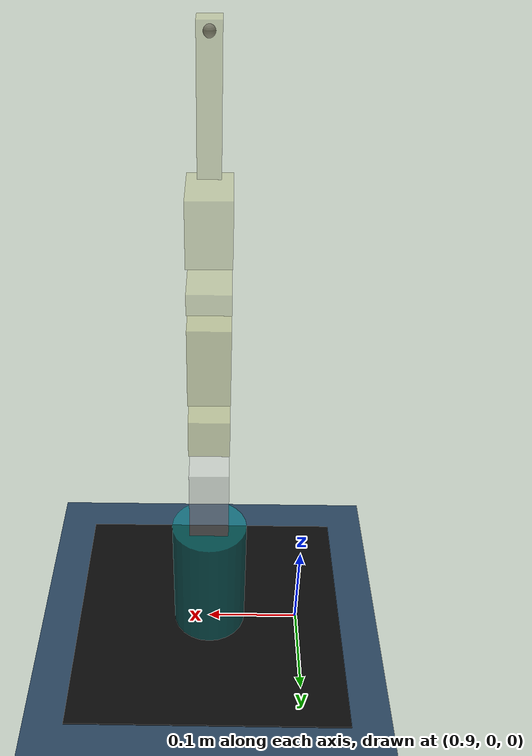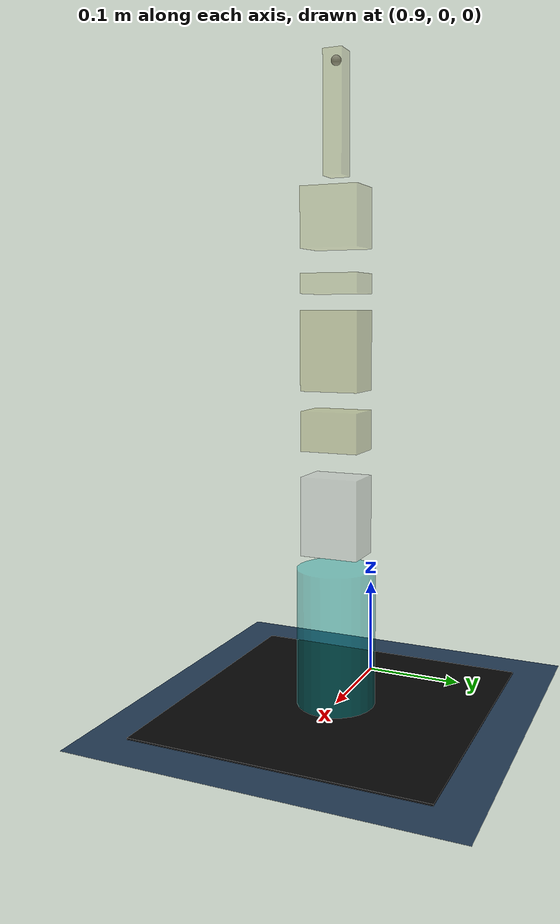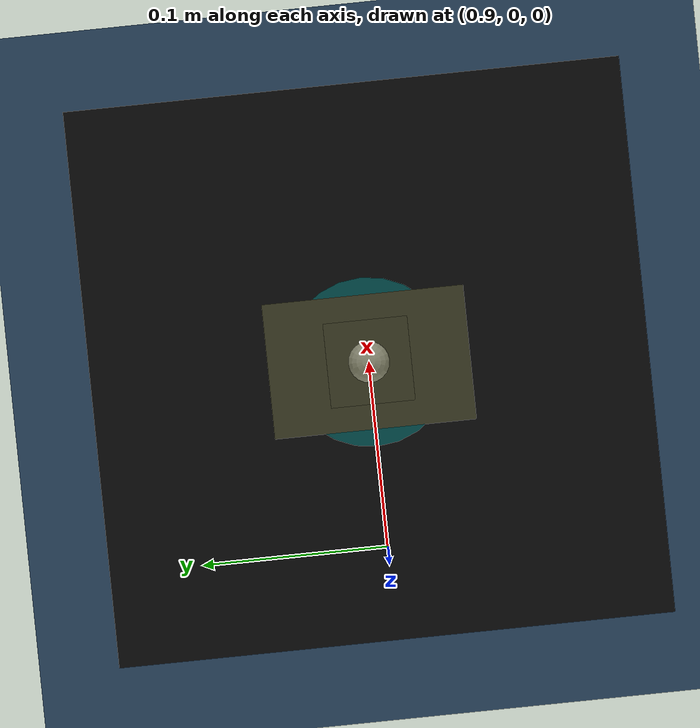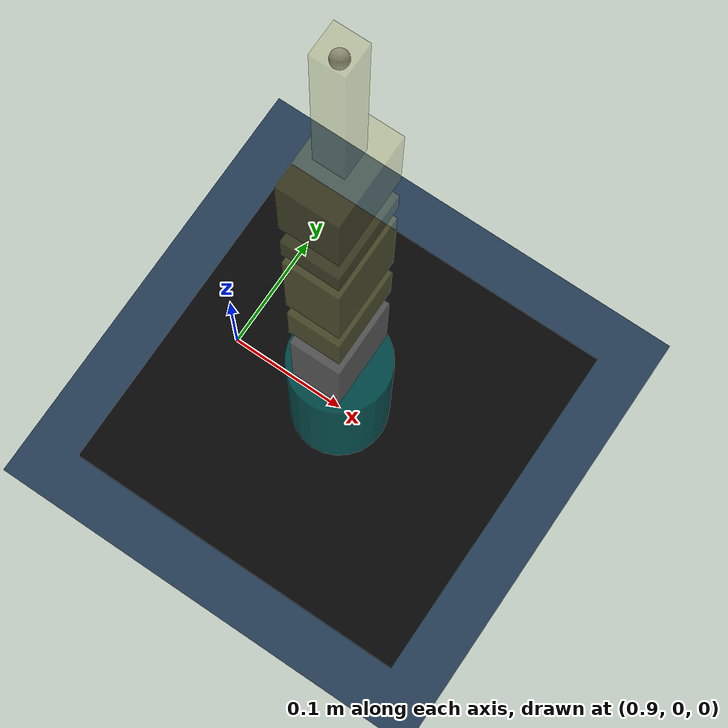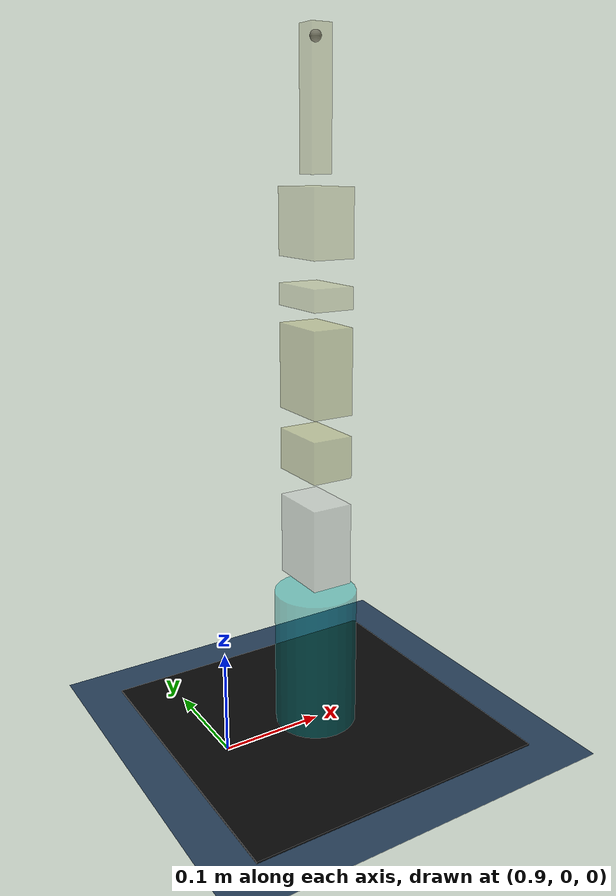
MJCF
<mujoco>
  <!-- core, engine, views, renderer -->
  <option gravity="0 0 0"/>
  <asset>
    <texture type="2d" name="groundplane" builtin="checker" mark="edge" rgb1="0.2 0.3 0.4" rgb2="0.1 0.2 0.3"
      markrgb="0.8 0.8 0.8" width="500" height="500"/>
    <material name="groundplane" texture="groundplane" texuniform="true" texrepeat="5 5" reflectance="0.2"/>
  </asset>

  <default>
    <default class="size3">
      <joint range="-3.1415 3.1415"/>
      <general ctrlrange="-3.1415 3.1415"/>
    </default>

    <default class="collision">
      <geom type="capsule" group="3"/>
      <default class="eef_collision">
        <geom type="cylinder"/>
      </default>
    </default>
  </default>

  <worldbody>

    <light pos="0 0 1.5" dir="0 0 -1" directional="true"/>
    <geom name="floor" size="0 0 0.05" type="plane" material="groundplane"/>

    <body name="base_link" pos="1.0 0.0 0.0" quat="1 0 0 0">
      <geom type="box" size="0.15 0.15 0.001" rgba="0.033 0.033 0.033 1"/>

      <body name="link_1" pos="0.0 0.0 0.002" quat="1 0 0 0">
        <geom type="cylinder" size="0.04 0.07" rgba="0.0 0.7 0.7 0.4" pos="0.0 0.0 0.07"/>

        <joint name="joint_1" type="hinge" axis="0 0 1" range="-6.28319 6.28319" armature="0.1"/>

        <body name="link_2" pos="0.0 0.0 0.154" quat="1 0 0 0">
          <geom type="box" size="0.02 0.03 0.04" rgba="0.82 0.82 0.82 0.4" pos="0.0 0.0 0.04"/>

          <joint name="joint_2" type="hinge" axis="0 1 0" range="-6.28319 6.28319" armature="0.1"/>
          <body name="link_3" pos="0.0 0.0 0.106" quat="1 0 0 0">
            <geom type="box" size="0.02 0.03 0.02 " rgba="0.7 0.7 0.4 0.4" pos="0 0 0.02"/>

            <joint name="joint_3" type="hinge" axis="0 0 1" range="-6.28319 6.28319" armature="0.1"/>
            <body name="link_4" pos="0.0 0.0 0.06" quat="1 0 0 0">
              <geom type="box" size="0.02 0.03 0.04 " rgba="0.7 0.7 0.4 0.4" pos="0 0 0.04" />

              <joint name="joint_4" type="hinge" axis="0 1 0" range="-6.28319 6.28319" armature="0.1"/>
              <body name="link_5" pos="0.0 0.0 0.096" quat="1 0 0 0">
                <geom type="box" size="0.02 0.03 0.01" rgba="0.7 0.7 0.4 0.3" pos="0 0 0.01" />

                <joint name="joint_5" type="hinge" axis="0 0 1" range="-6.28319 6.28319" armature="0.1"/>
                <body name="link_6" pos="0.0 0.0 0.044" quat="1 0 0 0">
                  <geom type="box" size="0.02 0.03 0.03 " rgba="0.7 0.7 0.4 0.3" pos="0.0 0.0 0.03" />

                  <joint name="joint_6" type="hinge" axis="0 1 0" range="-6.28319 6.28319" armature="0.1"/>
                  <body name="link_7" pos="0.0 0.0 0.08" quat="1 0 0 0">
                    <geom type="box" size="0.01 0.01 0.06" rgba="0.7 0.7 0.4 0.3" pos="0.0 0.0 0.05" />

                    <joint name="joint_7" type="hinge" axis="1 0 0" range="-6.28319 6.28319" armature="0.1"/>
                    <body name="link_8" pos="0.0 0.0 0.10" quat="1 0 0 0">
                      <site name="attachment_site" pos="0 0 0" quat="1 0 0 0"/>
                    </body>
                  </body>
                </body>
              </body>
            </body>
          </body>
        </body>
      </body>
    </body>

  </worldbody>

</mujoco>
